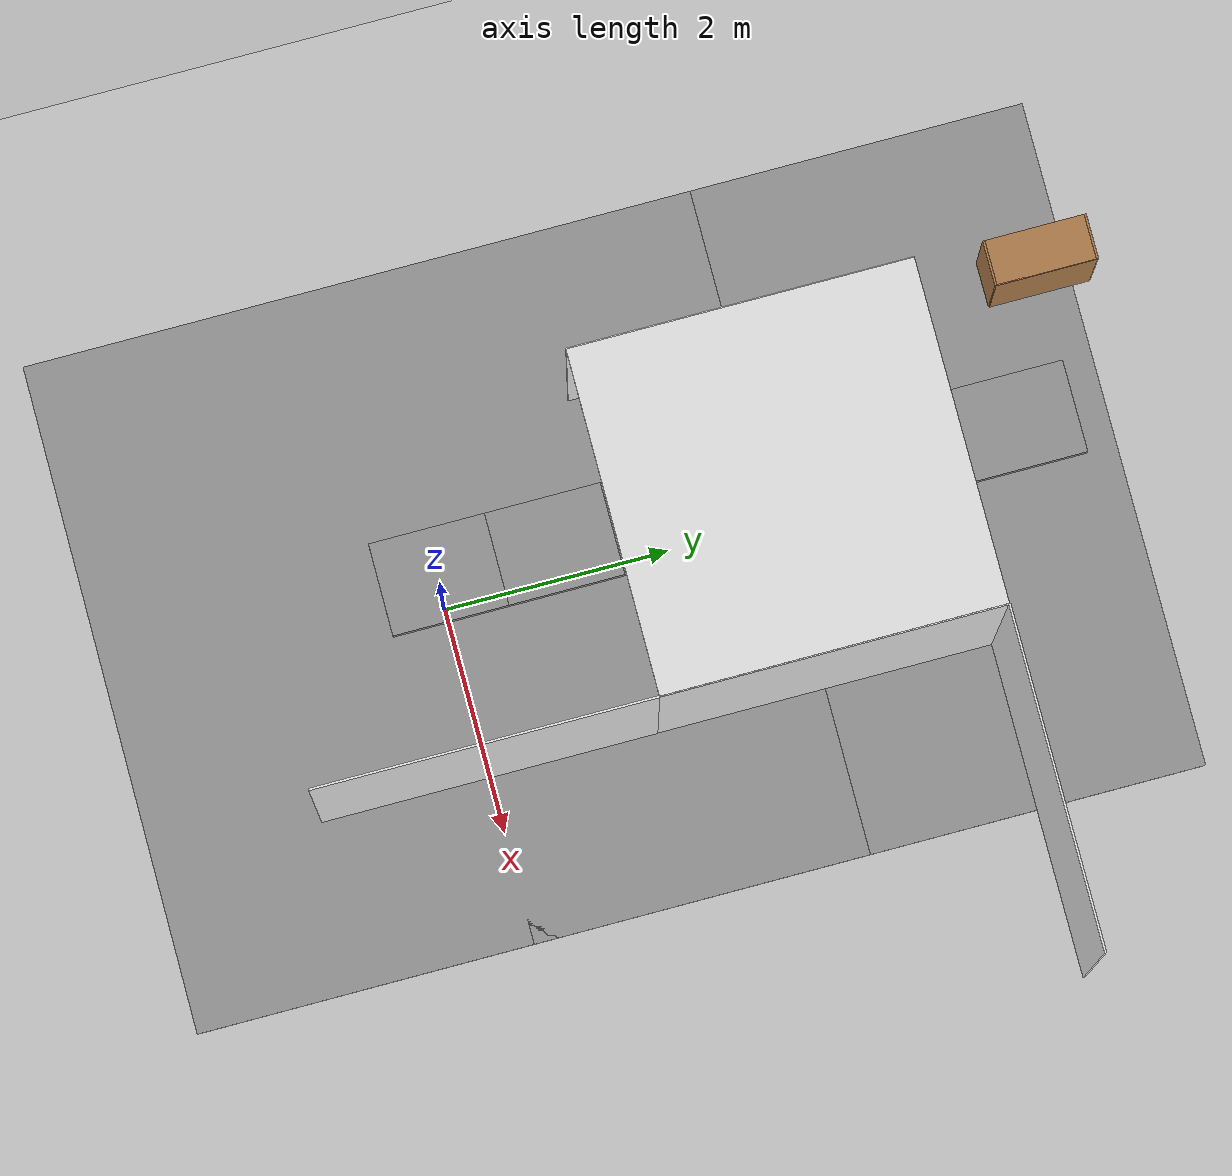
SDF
<sdf version="1.6">
 <world name="default">
  <model name="ground_plane">
   <static>1</static>
   <link name="link">
    <collision name="collision">
     <geometry><plane><normal>0 0 1</normal><size>200 200</size></plane></geometry>
     <surface><friction><ode><mu>100</mu><mu2>50</mu2></ode></friction></surface>
    </collision>
    <visual name="visual">
     <cast_shadows>0</cast_shadows>
     <geometry><plane><normal>0 0 1</normal><size>200 200</size></plane></geometry>
     <material>
      <script><uri>file://media/materials/scripts/gazebo.material</uri><name>Gazebo/Grey</name></script>
     </material>
    </visual>
   </link>
  </model>
  <model name="wall_right_0_0_0_0">
   <static>1</static>
   <pose>1.5 0.0 1.5 0.0 0.0 1.57</pose>
   <link name="link">
    <collision name="collision"><geometry><box><size>3 0.02 3</size></box></geometry></collision>
    <visual name="visual">
     <material>
      <script><name>Gazebo/White</name><uri>file://media/materials/scripts/gazebo.material</uri></script>
     </material>
     <geometry><box><size>3 0.02 3</size></box></geometry>
    </visual>
   </link>
  </model>
  <model name="ceiling_1_0_0_0_0">
   <pose>0.0 0.0 2.55 0.0 0.0 0.0</pose>
   <link name="link_1">
    <visual name="visual">
     <geometry><box><size>0.8 1 0.1</size></box></geometry>
     <material>
      <script><uri>file://media/materials/scripts/gazebo.material</uri><name>Gazebo/Grey</name></script>
     </material>
    </visual>
    <collision name="collision"><geometry><box><size>0.8 1 0.1</size></box></geometry></collision>
   </link>
   <static>1</static>
  </model>
  <model name="ceiling_1_0_0_2_0">
   <pose>0.0 1.0 2.55 0.0 0.0 0.0</pose>
   <link name="link_1">
    <visual name="visual">
     <geometry><box><size>0.8 1 0.1</size></box></geometry>
     <material>
      <script><uri>file://media/materials/scripts/gazebo.material</uri><name>Gazebo/Grey</name></script>
     </material>
    </visual>
    <collision name="collision"><geometry><box><size>0.8 1 0.1</size></box></geometry></collision>
   </link>
   <static>1</static>
  </model>
  <model name="wall_bottom_0_0_0_0">
   <static>1</static>
   <link name="link">
    <collision name="collision"><geometry><box><size>6 6 0.02</size></box></geometry></collision>
    <visual name="visual">
     <material>
      <script><name>Gazebo/Grey</name><uri>file://media/materials/scripts/gazebo.material</uri></script>
     </material>
     <geometry><box><size>6 6 0.02</size></box></geometry>
    </visual>
   </link>
  </model>
  <model name="wall_right_0_1_0_1">
   <static>1</static>
   <pose>1.5 3.0 1.5 0.0 0.0 1.57</pose>
   <link name="link">
    <collision name="collision"><geometry><box><size>3 0.02 3</size></box></geometry></collision>
    <visual name="visual">
     <material>
      <script><name>Gazebo/White</name><uri>file://media/materials/scripts/gazebo.material</uri></script>
     </material>
     <geometry><box><size>3 0.02 3</size></box></geometry>
    </visual>
   </link>
  </model>
  <model name="wall_left_0_1_0_1">
   <static>1</static>
   <pose>-1.5 3.0 1.5 0.0 0.0 1.57</pose>
   <link name="link">
    <collision name="collision"><geometry><box><size>3 0.02 3</size></box></geometry></collision>
    <visual name="visual">
     <material>
      <script><name>Gazebo/White</name><uri>file://media/materials/scripts/gazebo.material</uri></script>
     </material>
     <geometry><box><size>3 0.02 3</size></box></geometry>
    </visual>
   </link>
  </model>
  <model name="wall_top_0_1_0_1">
   <static>1</static>
   <pose>0.0 3.0 3.0 1.57 0.0 0.0</pose>
   <link name="link">
    <collision name="collision"><geometry><box><size>3 0.02 3</size></box></geometry></collision>
    <visual name="visual">
     <material>
      <script><name>Gazebo/White</name><uri>file://media/materials/scripts/gazebo.material</uri></script>
     </material>
     <geometry><box><size>3 0.02 3</size></box></geometry>
    </visual>
   </link>
  </model>
  <model name="ceiling_1_0_1_0_1">
   <pose>0.0 3.0 2.55 0.0 0.0 0.0</pose>
   <link name="link_1">
    <visual name="visual">
     <geometry><box><size>0.8 1 0.1</size></box></geometry>
     <material>
      <script><uri>file://media/materials/scripts/gazebo.material</uri><name>Gazebo/Grey</name></script>
     </material>
    </visual>
    <collision name="collision"><geometry><box><size>0.8 1 0.1</size></box></geometry></collision>
   </link>
   <static>1</static>
  </model>
  <model name="ceiling_1_0_1_1_1">
   <pose>0.0 2.0 2.55 0.0 0.0 0.0</pose>
   <link name="link_1">
    <visual name="visual">
     <geometry><box><size>0.8 1 0.1</size></box></geometry>
     <material>
      <script><uri>file://media/materials/scripts/gazebo.material</uri><name>Gazebo/Grey</name></script>
     </material>
    </visual>
    <collision name="collision"><geometry><box><size>0.8 1 0.1</size></box></geometry></collision>
   </link>
   <static>1</static>
  </model>
  <model name="ceiling_1_0_1_2_1">
   <pose>0.0 4.0 2.55 0.0 0.0 0.0</pose>
   <link name="link_1">
    <visual name="visual">
     <geometry><box><size>0.8 1 0.1</size></box></geometry>
     <material>
      <script><uri>file://media/materials/scripts/gazebo.material</uri><name>Gazebo/Grey</name></script>
     </material>
    </visual>
    <collision name="collision"><geometry><box><size>0.8 1 0.1</size></box></geometry></collision>
   </link>
   <static>1</static>
  </model>
  <model name="bookshelf_0_1_0_1">
   <static>true</static>
   <pose>-1.35 3.2419950944325002 0.0 0.0 0.0 0.0</pose>
   <link name="link">
    <pose>0 0 0 0 0 -1.57</pose>
    <inertial><mass>1.0</mass></inertial>
    <collision name="back">
     <pose>0 0.005 0.6 0 0 0</pose>
     <geometry><box><size>0.9 0.01 1.2</size></box></geometry>
    </collision>
    <visual name="visual1">
     <pose>0 0.005 0.6 0 0 0</pose>
     <geometry><box><size>0.9 0.01 1.2</size></box></geometry>
     <material>
      <script><uri>file://media/materials/scripts/gazebo.material</uri><name>Gazebo/Wood</name></script>
     </material>
    </visual>
    <collision name="left_side">
     <pose>0.45 -0.195 0.6 0 0 0</pose>
     <geometry><box><size>0.02 0.4 1.2</size></box></geometry>
    </collision>
    <visual name="visual2">
     <pose>0.45 -0.195 0.6 0 0 0</pose>
     <geometry><box><size>0.02 0.4 1.2</size></box></geometry>
     <material>
      <script><uri>file://media/materials/scripts/gazebo.material</uri><name>Gazebo/Wood</name></script>
     </material>
    </visual>
    <collision name="right_side">
     <pose>-0.45 -0.195 0.6 0 0 0</pose>
     <geometry><box><size>0.02 0.4 1.2</size></box></geometry>
    </collision>
    <visual name="visual3">
     <pose>-0.45 -0.195 0.6 0 0 0</pose>
     <geometry><box><size>0.02 0.4 1.2</size></box></geometry>
     <material>
      <script><uri>file://media/materials/scripts/gazebo.material</uri><name>Gazebo/Wood</name></script>
     </material>
    </visual>
    <collision name="bottom">
     <pose>0 -0.195 0.03 0 0 0</pose>
     <geometry><box><size>0.88 0.4 0.06</size></box></geometry>
    </collision>
    <visual name="visual4">
     <pose>0 -0.195 0.03 0 0 0</pose>
     <geometry><box><size>0.88 0.4 0.06</size></box></geometry>
     <material>
      <script><uri>file://media/materials/scripts/gazebo.material</uri><name>Gazebo/Wood</name></script>
     </material>
    </visual>
    <collision name="top">
     <pose>0 -0.195 1.19 0 0 0</pose>
     <geometry><box><size>0.88 0.4 0.02</size></box></geometry>
    </collision>
    <visual name="visual5">
     <pose>0 -0.195 1.19 0 0 0</pose>
     <geometry><box><size>0.88 0.4 0.02</size></box></geometry>
     <material>
      <script><uri>file://media/materials/scripts/gazebo.material</uri><name>Gazebo/Wood</name></script>
     </material>
    </visual>
    <collision name="low_shelf">
     <pose>0 -0.195 0.43 0 0 0</pose>
     <geometry><box><size>0.88 0.4 0.02</size></box></geometry>
    </collision>
    <visual name="visual6">
     <pose>0 -0.195 0.43 0 0 0</pose>
     <geometry><box><size>0.88 0.4 0.02</size></box></geometry>
     <material>
      <script><uri>file://media/materials/scripts/gazebo.material</uri><name>Gazebo/Wood</name></script>
     </material>
    </visual>
    <collision name="high_shelf">
     <pose>0 -0.195 0.8 0 0 0</pose>
     <geometry><box><size>0.88 0.4 0.02</size></box></geometry>
    </collision>
    <visual name="visual7">
     <pose>0 -0.195 0.8 0 0 0</pose>
     <geometry><box><size>0.88 0.4 0.02</size></box></geometry>
     <material>
      <script><uri>file://media/materials/scripts/gazebo.material</uri><name>Gazebo/Wood</name></script>
     </material>
    </visual>
   </link>
  </model>
  <model name="wall_bottom_0_1_0_1">
   <static>1</static>
   <pose>0.0 3.0 0.0 0.0 0.0 0.0</pose>
   <link name="link">
    <collision name="collision"><geometry><box><size>6 6 0.02</size></box></geometry></collision>
    <visual name="visual">
     <material>
      <script><name>Gazebo/Grey</name><uri>file://media/materials/scripts/gazebo.material</uri></script>
     </material>
     <geometry><box><size>6 6 0.02</size></box></geometry>
    </visual>
   </link>
  </model>
  <model name="ceiling_1_0_2_0_2">
   <pose>0.0 5.0 2.55 0.0 0.0 0.0</pose>
   <link name="link_1">
    <visual name="visual">
     <geometry><box><size>0.8 1 0.1</size></box></geometry>
     <material>
      <script><uri>file://media/materials/scripts/gazebo.material</uri><name>Gazebo/Grey</name></script>
     </material>
    </visual>
    <collision name="collision"><geometry><box><size>0.8 1 0.1</size></box></geometry></collision>
   </link>
   <static>1</static>
  </model>
  <model name="bookshelf_0_2_0_2">
   <static>true</static>
   <pose>-1.35 5.701778569923 0.0 0.0 0.0 0.0</pose>
   <link name="link">
    <pose>0 0 0 0 0 -1.57</pose>
    <inertial><mass>1.0</mass></inertial>
    <collision name="back">
     <pose>0 0.005 0.6 0 0 0</pose>
     <geometry><box><size>0.9 0.01 1.2</size></box></geometry>
    </collision>
    <visual name="visual1">
     <pose>0 0.005 0.6 0 0 0</pose>
     <geometry><box><size>0.9 0.01 1.2</size></box></geometry>
     <material>
      <script><uri>file://media/materials/scripts/gazebo.material</uri><name>Gazebo/Wood</name></script>
     </material>
    </visual>
    <collision name="left_side">
     <pose>0.45 -0.195 0.6 0 0 0</pose>
     <geometry><box><size>0.02 0.4 1.2</size></box></geometry>
    </collision>
    <visual name="visual2">
     <pose>0.45 -0.195 0.6 0 0 0</pose>
     <geometry><box><size>0.02 0.4 1.2</size></box></geometry>
     <material>
      <script><uri>file://media/materials/scripts/gazebo.material</uri><name>Gazebo/Wood</name></script>
     </material>
    </visual>
    <collision name="right_side">
     <pose>-0.45 -0.195 0.6 0 0 0</pose>
     <geometry><box><size>0.02 0.4 1.2</size></box></geometry>
    </collision>
    <visual name="visual3">
     <pose>-0.45 -0.195 0.6 0 0 0</pose>
     <geometry><box><size>0.02 0.4 1.2</size></box></geometry>
     <material>
      <script><uri>file://media/materials/scripts/gazebo.material</uri><name>Gazebo/Wood</name></script>
     </material>
    </visual>
    <collision name="bottom">
     <pose>0 -0.195 0.03 0 0 0</pose>
     <geometry><box><size>0.88 0.4 0.06</size></box></geometry>
    </collision>
    <visual name="visual4">
     <pose>0 -0.195 0.03 0 0 0</pose>
     <geometry><box><size>0.88 0.4 0.06</size></box></geometry>
     <material>
      <script><uri>file://media/materials/scripts/gazebo.material</uri><name>Gazebo/Wood</name></script>
     </material>
    </visual>
    <collision name="top">
     <pose>0 -0.195 1.19 0 0 0</pose>
     <geometry><box><size>0.88 0.4 0.02</size></box></geometry>
    </collision>
    <visual name="visual5">
     <pose>0 -0.195 1.19 0 0 0</pose>
     <geometry><box><size>0.88 0.4 0.02</size></box></geometry>
     <material>
      <script><uri>file://media/materials/scripts/gazebo.material</uri><name>Gazebo/Wood</name></script>
     </material>
    </visual>
    <collision name="low_shelf">
     <pose>0 -0.195 0.43 0 0 0</pose>
     <geometry><box><size>0.88 0.4 0.02</size></box></geometry>
    </collision>
    <visual name="visual6">
     <pose>0 -0.195 0.43 0 0 0</pose>
     <geometry><box><size>0.88 0.4 0.02</size></box></geometry>
     <material>
      <script><uri>file://media/materials/scripts/gazebo.material</uri><name>Gazebo/Wood</name></script>
     </material>
    </visual>
    <collision name="high_shelf">
     <pose>0 -0.195 0.8 0 0 0</pose>
     <geometry><box><size>0.88 0.4 0.02</size></box></geometry>
    </collision>
    <visual name="visual7">
     <pose>0 -0.195 0.8 0 0 0</pose>
     <geometry><box><size>0.88 0.4 0.02</size></box></geometry>
     <material>
      <script><uri>file://media/materials/scripts/gazebo.material</uri><name>Gazebo/Wood</name></script>
     </material>
    </visual>
   </link>
  </model>
  <model name="wall_right_1_2_0_3">
   <static>1</static>
   <pose>3.0 4.5 1.5 0.0 0.0 0.0</pose>
   <link name="link">
    <collision name="collision"><geometry><box><size>3 0.02 3</size></box></geometry></collision>
    <visual name="visual">
     <material>
      <script><name>Gazebo/White</name><uri>file://media/materials/scripts/gazebo.material</uri></script>
     </material>
     <geometry><box><size>3 0.02 3</size></box></geometry>
    </visual>
   </link>
  </model>
 </world>
</sdf>
